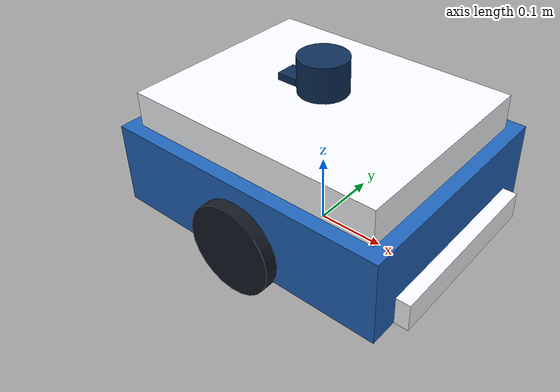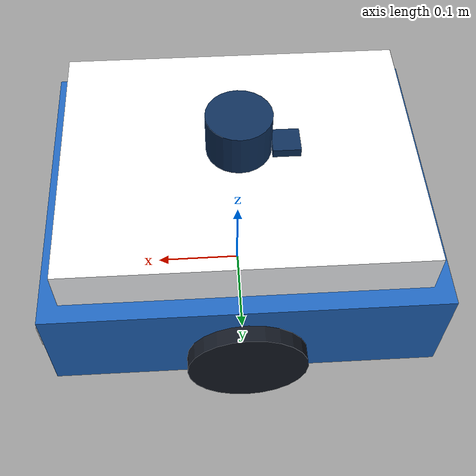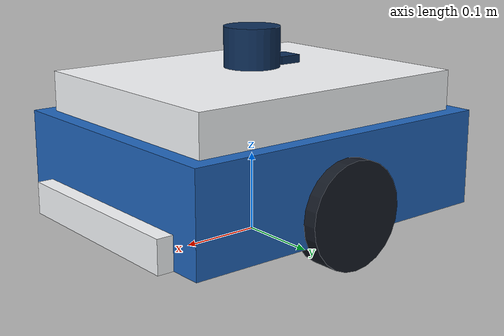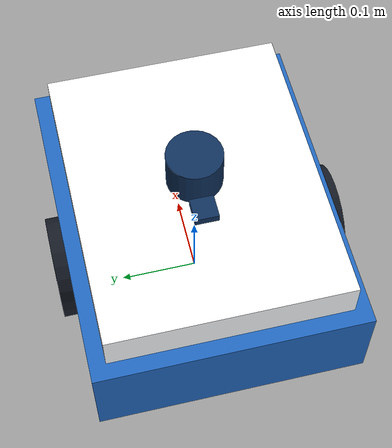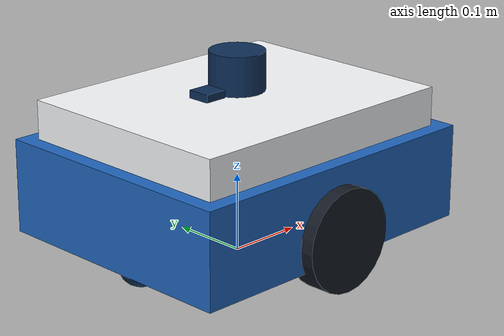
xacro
<?xml version="1.0"?>
<robot name="cleanbot" xmlns:xacro="http://www.ros.org/wiki/xacro">

  <xacro:property name="wheel_radius" value="0.065"/>
  <xacro:property name="wheel_width" value="0.035"/>
  <xacro:property name="wheel_separation" value="0.34"/>
  <xacro:property name="base_length" value="0.42"/>
  <xacro:property name="base_width" value="0.34"/>
  <xacro:property name="base_height" value="0.12"/>
  <xacro:property name="base_z" value="0.095"/>
  <xacro:property name="laser_z" value="0.235"/>

  <material name="cleanbot_blue">
    <color rgba="0.129 0.400 0.741 1.0"/>
  </material>
  <material name="cleanbot_dark_blue">
    <color rgba="0.055 0.184 0.353 1.0"/>
  </material>
  <material name="cleanbot_white">
    <color rgba="0.980 0.988 1.0 1.0"/>
  </material>
  <material name="cleanbot_black">
    <color rgba="0.08 0.10 0.14 1.0"/>
  </material>

  <xacro:macro name="box_inertia" params="m x y z">
    <inertial>
      <mass value="${m}"/>
      <inertia ixx="${m * (y*y + z*z) / 12.0}" ixy="0" ixz="0"
               iyy="${m * (x*x + z*z) / 12.0}" iyz="0"
               izz="${m * (x*x + y*y) / 12.0}"/>
    </inertial>
  </xacro:macro>

  <xacro:macro name="cylinder_inertia" params="m r h">
    <inertial>
      <mass value="${m}"/>
      <inertia ixx="${m * (3*r*r + h*h) / 12.0}" ixy="0" ixz="0"
               iyy="${m * (3*r*r + h*h) / 12.0}" iyz="0"
               izz="${m * r*r / 2.0}"/>
    </inertial>
  </xacro:macro>

  <!-- Base                                                               -->
  <link name="base_footprint"/>

  <joint name="base_joint" type="fixed">
    <parent link="base_footprint"/>
    <child link="base_link"/>
    <origin xyz="0 0 ${base_z}" rpy="0 0 0"/>
  </joint>

  <link name="base_link">
    <visual>
      <origin xyz="0 0 0" rpy="0 0 0"/>
      <geometry>
        <box size="${base_length} ${base_width} ${base_height}"/>
      </geometry>
      <material name="cleanbot_blue"/>
    </visual>
    <collision>
      <origin xyz="0 0 0" rpy="0 0 0"/>
      <geometry>
        <box size="${base_length} ${base_width} ${base_height}"/>
      </geometry>
    </collision>
    <xacro:box_inertia m="6.5" x="${base_length}" y="${base_width}" z="${base_height}"/>
  </link>

  <!-- White top shell -->
  <link name="top_shell">
    <visual>
      <origin xyz="0 0 0" rpy="0 0 0"/>
      <geometry>
        <box size="${base_length - 0.04} ${base_width - 0.04} 0.05"/>
      </geometry>
      <material name="cleanbot_white"/>
    </visual>
    <collision>
      <origin xyz="0 0 0" rpy="0 0 0"/>
      <geometry>
        <box size="${base_length - 0.04} ${base_width - 0.04} 0.05"/>
      </geometry>
    </collision>
    <xacro:box_inertia m="1.2" x="${base_length - 0.04}" y="${base_width - 0.04}" z="0.05"/>
  </link>

  <joint name="top_shell_joint" type="fixed">
    <parent link="base_link"/>
    <child link="top_shell"/>
    <origin xyz="0 0 ${base_height / 2.0 + 0.025}" rpy="0 0 0"/>
  </joint>

  <!-- Drive wheels                                                       -->
  <xacro:macro name="wheel" params="prefix y_offset">
    <link name="${prefix}_wheel">
      <visual>
        <origin xyz="0 0 0" rpy="1.5708 0 0"/>
        <geometry>
          <cylinder radius="${wheel_radius}" length="${wheel_width}"/>
        </geometry>
        <material name="cleanbot_black"/>
      </visual>
      <collision>
        <origin xyz="0 0 0" rpy="1.5708 0 0"/>
        <geometry>
          <cylinder radius="${wheel_radius}" length="${wheel_width}"/>
        </geometry>
      </collision>
      <xacro:cylinder_inertia m="0.45" r="${wheel_radius}" h="${wheel_width}"/>
    </link>

    <joint name="${prefix}_wheel_joint" type="continuous">
      <parent link="base_link"/>
      <child link="${prefix}_wheel"/>
      <origin xyz="0 ${y_offset} ${wheel_radius - base_z}" rpy="0 0 0"/>
      <axis xyz="0 1 0"/>
    </joint>
  </xacro:macro>

  <xacro:wheel prefix="left" y_offset="${wheel_separation / 2.0}"/>
  <xacro:wheel prefix="right" y_offset="${-wheel_separation / 2.0}"/>

  <!-- Casters                                                            -->
  <xacro:macro name="caster" params="prefix x_offset">
    <link name="${prefix}_caster">
      <visual>
        <origin xyz="0 0 0" rpy="0 0 0"/>
        <geometry>
          <sphere radius="0.03"/>
        </geometry>
        <material name="cleanbot_dark_blue"/>
      </visual>
      <collision>
        <origin xyz="0 0 0" rpy="0 0 0"/>
        <geometry>
          <sphere radius="0.03"/>
        </geometry>
      </collision>
      <xacro:cylinder_inertia m="0.15" r="0.03" h="0.06"/>
    </link>
    <joint name="${prefix}_caster_joint" type="fixed">
      <parent link="base_link"/>
      <child link="${prefix}_caster"/>
      <origin xyz="${x_offset} 0 ${0.03 - base_z}" rpy="0 0 0"/>
    </joint>
  </xacro:macro>

  <xacro:caster prefix="front" x_offset="0.16"/>
  <xacro:caster prefix="rear" x_offset="-0.16"/>

  <!-- LiDAR                                                              -->
  <link name="laser">
    <visual>
      <origin xyz="0 0 0" rpy="0 0 0"/>
      <geometry>
        <cylinder radius="0.035" length="0.05"/>
      </geometry>
      <material name="cleanbot_dark_blue"/>
    </visual>
    <collision>
      <origin xyz="0 0 0" rpy="0 0 0"/>
      <geometry>
        <cylinder radius="0.035" length="0.05"/>
      </geometry>
    </collision>
    <xacro:cylinder_inertia m="0.19" r="0.035" h="0.05"/>
  </link>

  <joint name="laser_joint" type="fixed">
    <parent link="base_link"/>
    <child link="laser"/>
    <origin xyz="0 0 ${laser_z - base_z}" rpy="0 0 0"/>
  </joint>

  <link name="laser_frame"/>
  <joint name="laser_frame_joint" type="fixed">
    <parent link="laser"/>
    <child link="laser_frame"/>
    <origin xyz="0 0 0" rpy="0 0 0"/>
  </joint>

  <!-- IMU                                                                -->
  <link name="imu_link">
    <visual>
      <origin xyz="0 0 0" rpy="0 0 0"/>
      <geometry>
        <box size="0.03 0.03 0.01"/>
      </geometry>
      <material name="cleanbot_dark_blue"/>
    </visual>
    <xacro:box_inertia m="0.02" x="0.03" y="0.03" z="0.01"/>
  </link>

  <joint name="imu_joint" type="fixed">
    <parent link="base_link"/>
    <child link="imu_link"/>
    <origin xyz="-0.05 0 ${base_height / 2.0 + 0.06}" rpy="0 0 0"/>
  </joint>

  <!-- Cleaning deck (brush + vacuum)                                     -->
  <link name="cleaning_deck">
    <visual>
      <origin xyz="0 0 0" rpy="0 0 0"/>
      <geometry>
        <box size="0.20 0.26 0.04"/>
      </geometry>
      <material name="cleanbot_white"/>
    </visual>
    <collision>
      <origin xyz="0 0 0" rpy="0 0 0"/>
      <geometry>
        <box size="0.20 0.26 0.04"/>
      </geometry>
    </collision>
    <xacro:box_inertia m="1.4" x="0.20" y="0.26" z="0.04"/>
  </link>

  <joint name="cleaning_deck_joint" type="fixed">
    <parent link="base_link"/>
    <child link="cleaning_deck"/>
    <origin xyz="${base_length / 2.0 - 0.08} 0 ${-base_height / 2.0 + 0.02}" rpy="0 0 0"/>
  </joint>

  <!-- Wheel visual rotation source                                       -->
  <gazebo>
    <plugin name="diff_drive" filename="libgazebo_ros_diff_drive.so">
      <left_joint>left_wheel_joint</left_joint>
      <right_joint>right_wheel_joint</right_joint>
      <wheel_separation>${wheel_separation}</wheel_separation>
      <wheel_diameter>${wheel_radius * 2.0}</wheel_diameter>
      <max_wheel_torque>12</max_wheel_torque>
      <max_wheel_acceleration>2.0</max_wheel_acceleration>
      <ros>
        <remapping>cmd_vel:=/cmd_vel</remapping>
        <remapping>odom:=/odom</remapping>
      </ros>
    </plugin>
  </gazebo>

</robot>
